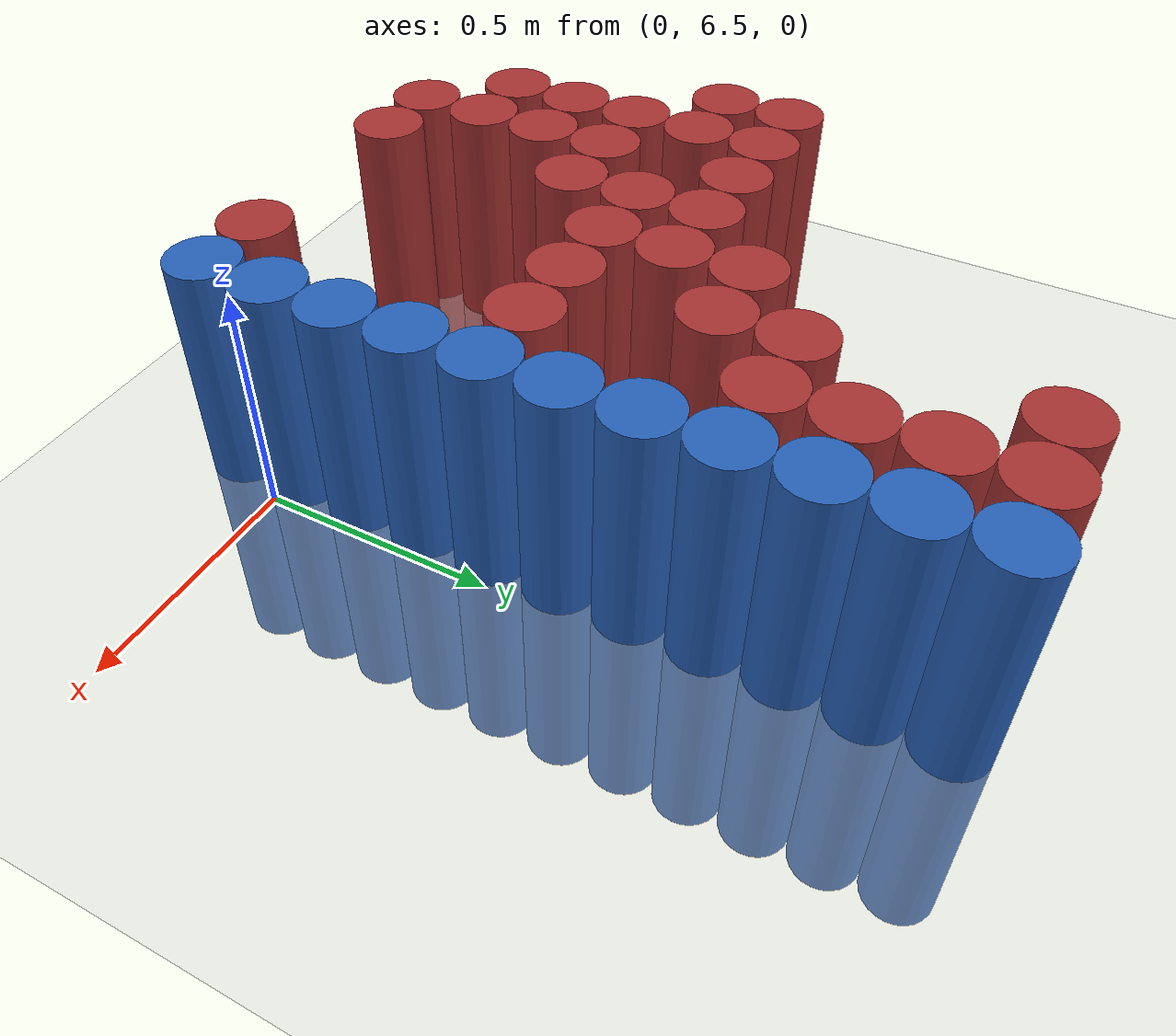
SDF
<sdf version="1.6">
 <world name="default">
  <model name="ground_plane">
   <static>1</static>
   <link name="link">
    <collision name="collision">
     <geometry><plane><normal>0 0 1</normal><size>100 100</size></plane></geometry>
     <surface><friction><ode><mu>100</mu><mu2>50</mu2></ode></friction></surface>
    </collision>
    <visual name="visual">
     <cast_shadows>0</cast_shadows>
     <geometry><plane><normal>0 0 1</normal><size>100 100</size></plane></geometry>
     <material>
      <script><uri>file://media/materials/scripts/gazebo.material</uri><name>Gazebo/Grey</name></script>
     </material>
    </visual>
   </link>
  </model>
  <model name="unit_cylinder_224">
   <static>1</static>
   <pose>-1.125000 6.975000 0.000000 0.000000 0.000000 0.000000</pose>
   <link name="link">
    <inertial>
     <mass>1</mass>
     <inertia><ixx>0.145833</ixx><ixy>0</ixy><ixz>0</ixz><iyy>0.145833</iyy><iyz>0</iyz><izz>0.125</izz></inertia>
    </inertial>
    <collision name="collision">
     <geometry><cylinder><radius>0.075000</radius><length>1</length></cylinder></geometry>
    </collision>
    <visual name="visual">
     <geometry><cylinder><radius>0.075000</radius><length>1</length></cylinder></geometry>
     <material>
      <ambient>0.648000 0.192000 0.192000 1</ambient>
      <diffuse>0.648000 0.192000 0.192000 1</diffuse>
     </material>
     <material>
      <script><name>Gazebo/Grey</name><uri>file://media/materials/scripts/gazebo.material</uri></script>
     </material>
    </visual>
    <sensor name="sensor_contact" type="contact"><contact><collision>collision</collision></contact></sensor>
   </link>
   <plugin filename="gz-sim-touchplugin-system" name="gz::sim::systems::TouchPlugin">
    <target>robot</target>
    <namespace>robot</namespace>
    <time>0.001</time>
    <enabled>true</enabled>
   </plugin>
  </model>
  <model name="unit_cylinder_225">
   <static>1</static>
   <pose>-1.125000 7.125000 0.000000 0.000000 0.000000 0.000000</pose>
   <link name="link">
    <inertial>
     <mass>1</mass>
     <inertia><ixx>0.145833</ixx><ixy>0</ixy><ixz>0</ixz><iyy>0.145833</iyy><iyz>0</iyz><izz>0.125</izz></inertia>
    </inertial>
    <collision name="collision">
     <geometry><cylinder><radius>0.075000</radius><length>1</length></cylinder></geometry>
    </collision>
    <visual name="visual">
     <geometry><cylinder><radius>0.075000</radius><length>1</length></cylinder></geometry>
     <material>
      <ambient>0.648000 0.192000 0.192000 1</ambient>
      <diffuse>0.648000 0.192000 0.192000 1</diffuse>
     </material>
     <material>
      <script><name>Gazebo/Grey</name><uri>file://media/materials/scripts/gazebo.material</uri></script>
     </material>
    </visual>
    <sensor name="sensor_contact" type="contact"><contact><collision>collision</collision></contact></sensor>
   </link>
   <plugin filename="gz-sim-touchplugin-system" name="gz::sim::systems::TouchPlugin">
    <target>robot</target>
    <namespace>robot</namespace>
    <time>0.001</time>
    <enabled>true</enabled>
   </plugin>
  </model>
  <model name="unit_cylinder_227">
   <static>1</static>
   <pose>-0.975000 6.525000 0.000000 0.000000 0.000000 0.000000</pose>
   <link name="link">
    <inertial>
     <mass>1</mass>
     <inertia><ixx>0.145833</ixx><ixy>0</ixy><ixz>0</ixz><iyy>0.145833</iyy><iyz>0</iyz><izz>0.125</izz></inertia>
    </inertial>
    <collision name="collision">
     <geometry><cylinder><radius>0.075000</radius><length>1</length></cylinder></geometry>
    </collision>
    <visual name="visual">
     <geometry><cylinder><radius>0.075000</radius><length>1</length></cylinder></geometry>
     <material>
      <ambient>0.648000 0.192000 0.192000 1</ambient>
      <diffuse>0.648000 0.192000 0.192000 1</diffuse>
     </material>
     <material>
      <script><name>Gazebo/Grey</name><uri>file://media/materials/scripts/gazebo.material</uri></script>
     </material>
    </visual>
    <sensor name="sensor_contact" type="contact"><contact><collision>collision</collision></contact></sensor>
   </link>
   <plugin filename="gz-sim-touchplugin-system" name="gz::sim::systems::TouchPlugin">
    <target>robot</target>
    <namespace>robot</namespace>
    <time>0.001</time>
    <enabled>true</enabled>
   </plugin>
  </model>
  <model name="unit_cylinder_228">
   <static>1</static>
   <pose>-0.975000 6.675000 0.000000 0.000000 0.000000 0.000000</pose>
   <link name="link">
    <inertial>
     <mass>1</mass>
     <inertia><ixx>0.145833</ixx><ixy>0</ixy><ixz>0</ixz><iyy>0.145833</iyy><iyz>0</iyz><izz>0.125</izz></inertia>
    </inertial>
    <collision name="collision">
     <geometry><cylinder><radius>0.075000</radius><length>1</length></cylinder></geometry>
    </collision>
    <visual name="visual">
     <geometry><cylinder><radius>0.075000</radius><length>1</length></cylinder></geometry>
     <material>
      <ambient>0.648000 0.192000 0.192000 1</ambient>
      <diffuse>0.648000 0.192000 0.192000 1</diffuse>
     </material>
     <material>
      <script><name>Gazebo/Grey</name><uri>file://media/materials/scripts/gazebo.material</uri></script>
     </material>
    </visual>
    <sensor name="sensor_contact" type="contact"><contact><collision>collision</collision></contact></sensor>
   </link>
   <plugin filename="gz-sim-touchplugin-system" name="gz::sim::systems::TouchPlugin">
    <target>robot</target>
    <namespace>robot</namespace>
    <time>0.001</time>
    <enabled>true</enabled>
   </plugin>
  </model>
  <model name="unit_cylinder_229">
   <static>1</static>
   <pose>-0.975000 6.825000 0.000000 0.000000 0.000000 0.000000</pose>
   <link name="link">
    <inertial>
     <mass>1</mass>
     <inertia><ixx>0.145833</ixx><ixy>0</ixy><ixz>0</ixz><iyy>0.145833</iyy><iyz>0</iyz><izz>0.125</izz></inertia>
    </inertial>
    <collision name="collision">
     <geometry><cylinder><radius>0.075000</radius><length>1</length></cylinder></geometry>
    </collision>
    <visual name="visual">
     <geometry><cylinder><radius>0.075000</radius><length>1</length></cylinder></geometry>
     <material>
      <ambient>0.648000 0.192000 0.192000 1</ambient>
      <diffuse>0.648000 0.192000 0.192000 1</diffuse>
     </material>
     <material>
      <script><name>Gazebo/Grey</name><uri>file://media/materials/scripts/gazebo.material</uri></script>
     </material>
    </visual>
    <sensor name="sensor_contact" type="contact"><contact><collision>collision</collision></contact></sensor>
   </link>
   <plugin filename="gz-sim-touchplugin-system" name="gz::sim::systems::TouchPlugin">
    <target>robot</target>
    <namespace>robot</namespace>
    <time>0.001</time>
    <enabled>true</enabled>
   </plugin>
  </model>
  <model name="unit_cylinder_230">
   <static>1</static>
   <pose>-0.975000 6.975000 0.000000 0.000000 0.000000 0.000000</pose>
   <link name="link">
    <inertial>
     <mass>1</mass>
     <inertia><ixx>0.145833</ixx><ixy>0</ixy><ixz>0</ixz><iyy>0.145833</iyy><iyz>0</iyz><izz>0.125</izz></inertia>
    </inertial>
    <collision name="collision">
     <geometry><cylinder><radius>0.075000</radius><length>1</length></cylinder></geometry>
    </collision>
    <visual name="visual">
     <geometry><cylinder><radius>0.075000</radius><length>1</length></cylinder></geometry>
     <material>
      <ambient>0.648000 0.192000 0.192000 1</ambient>
      <diffuse>0.648000 0.192000 0.192000 1</diffuse>
     </material>
     <material>
      <script><name>Gazebo/Grey</name><uri>file://media/materials/scripts/gazebo.material</uri></script>
     </material>
    </visual>
    <sensor name="sensor_contact" type="contact"><contact><collision>collision</collision></contact></sensor>
   </link>
   <plugin filename="gz-sim-touchplugin-system" name="gz::sim::systems::TouchPlugin">
    <target>robot</target>
    <namespace>robot</namespace>
    <time>0.001</time>
    <enabled>true</enabled>
   </plugin>
  </model>
  <model name="unit_cylinder_231">
   <static>1</static>
   <pose>-0.975000 7.125000 0.000000 0.000000 0.000000 0.000000</pose>
   <link name="link">
    <inertial>
     <mass>1</mass>
     <inertia><ixx>0.145833</ixx><ixy>0</ixy><ixz>0</ixz><iyy>0.145833</iyy><iyz>0</iyz><izz>0.125</izz></inertia>
    </inertial>
    <collision name="collision">
     <geometry><cylinder><radius>0.075000</radius><length>1</length></cylinder></geometry>
    </collision>
    <visual name="visual">
     <geometry><cylinder><radius>0.075000</radius><length>1</length></cylinder></geometry>
     <material>
      <ambient>0.648000 0.192000 0.192000 1</ambient>
      <diffuse>0.648000 0.192000 0.192000 1</diffuse>
     </material>
     <material>
      <script><name>Gazebo/Grey</name><uri>file://media/materials/scripts/gazebo.material</uri></script>
     </material>
    </visual>
    <sensor name="sensor_contact" type="contact"><contact><collision>collision</collision></contact></sensor>
   </link>
   <plugin filename="gz-sim-touchplugin-system" name="gz::sim::systems::TouchPlugin">
    <target>robot</target>
    <namespace>robot</namespace>
    <time>0.001</time>
    <enabled>true</enabled>
   </plugin>
  </model>
  <model name="unit_cylinder_237">
   <static>1</static>
   <pose>-0.825000 6.375000 0.000000 0.000000 0.000000 0.000000</pose>
   <link name="link">
    <inertial>
     <mass>1</mass>
     <inertia><ixx>0.145833</ixx><ixy>0</ixy><ixz>0</ixz><iyy>0.145833</iyy><iyz>0</iyz><izz>0.125</izz></inertia>
    </inertial>
    <collision name="collision">
     <geometry><cylinder><radius>0.075000</radius><length>1</length></cylinder></geometry>
    </collision>
    <visual name="visual">
     <geometry><cylinder><radius>0.075000</radius><length>1</length></cylinder></geometry>
     <material>
      <ambient>0.648000 0.192000 0.192000 1</ambient>
      <diffuse>0.648000 0.192000 0.192000 1</diffuse>
     </material>
     <material>
      <script><name>Gazebo/Grey</name><uri>file://media/materials/scripts/gazebo.material</uri></script>
     </material>
    </visual>
    <sensor name="sensor_contact" type="contact"><contact><collision>collision</collision></contact></sensor>
   </link>
   <plugin filename="gz-sim-touchplugin-system" name="gz::sim::systems::TouchPlugin">
    <target>robot</target>
    <namespace>robot</namespace>
    <time>0.001</time>
    <enabled>true</enabled>
   </plugin>
  </model>
  <model name="unit_cylinder_238">
   <static>1</static>
   <pose>-0.825000 6.525000 0.000000 0.000000 0.000000 0.000000</pose>
   <link name="link">
    <inertial>
     <mass>1</mass>
     <inertia><ixx>0.145833</ixx><ixy>0</ixy><ixz>0</ixz><iyy>0.145833</iyy><iyz>0</iyz><izz>0.125</izz></inertia>
    </inertial>
    <collision name="collision">
     <geometry><cylinder><radius>0.075000</radius><length>1</length></cylinder></geometry>
    </collision>
    <visual name="visual">
     <geometry><cylinder><radius>0.075000</radius><length>1</length></cylinder></geometry>
     <material>
      <ambient>0.648000 0.192000 0.192000 1</ambient>
      <diffuse>0.648000 0.192000 0.192000 1</diffuse>
     </material>
     <material>
      <script><name>Gazebo/Grey</name><uri>file://media/materials/scripts/gazebo.material</uri></script>
     </material>
    </visual>
    <sensor name="sensor_contact" type="contact"><contact><collision>collision</collision></contact></sensor>
   </link>
   <plugin filename="gz-sim-touchplugin-system" name="gz::sim::systems::TouchPlugin">
    <target>robot</target>
    <namespace>robot</namespace>
    <time>0.001</time>
    <enabled>true</enabled>
   </plugin>
  </model>
  <model name="unit_cylinder_239">
   <static>1</static>
   <pose>-0.825000 6.675000 0.000000 0.000000 0.000000 0.000000</pose>
   <link name="link">
    <inertial>
     <mass>1</mass>
     <inertia><ixx>0.145833</ixx><ixy>0</ixy><ixz>0</ixz><iyy>0.145833</iyy><iyz>0</iyz><izz>0.125</izz></inertia>
    </inertial>
    <collision name="collision">
     <geometry><cylinder><radius>0.075000</radius><length>1</length></cylinder></geometry>
    </collision>
    <visual name="visual">
     <geometry><cylinder><radius>0.075000</radius><length>1</length></cylinder></geometry>
     <material>
      <ambient>0.648000 0.192000 0.192000 1</ambient>
      <diffuse>0.648000 0.192000 0.192000 1</diffuse>
     </material>
     <material>
      <script><name>Gazebo/Grey</name><uri>file://media/materials/scripts/gazebo.material</uri></script>
     </material>
    </visual>
    <sensor name="sensor_contact" type="contact"><contact><collision>collision</collision></contact></sensor>
   </link>
   <plugin filename="gz-sim-touchplugin-system" name="gz::sim::systems::TouchPlugin">
    <target>robot</target>
    <namespace>robot</namespace>
    <time>0.001</time>
    <enabled>true</enabled>
   </plugin>
  </model>
  <model name="unit_cylinder_240">
   <static>1</static>
   <pose>-0.825000 6.825000 0.000000 0.000000 0.000000 0.000000</pose>
   <link name="link">
    <inertial>
     <mass>1</mass>
     <inertia><ixx>0.145833</ixx><ixy>0</ixy><ixz>0</ixz><iyy>0.145833</iyy><iyz>0</iyz><izz>0.125</izz></inertia>
    </inertial>
    <collision name="collision">
     <geometry><cylinder><radius>0.075000</radius><length>1</length></cylinder></geometry>
    </collision>
    <visual name="visual">
     <geometry><cylinder><radius>0.075000</radius><length>1</length></cylinder></geometry>
     <material>
      <ambient>0.648000 0.192000 0.192000 1</ambient>
      <diffuse>0.648000 0.192000 0.192000 1</diffuse>
     </material>
     <material>
      <script><name>Gazebo/Grey</name><uri>file://media/materials/scripts/gazebo.material</uri></script>
     </material>
    </visual>
    <sensor name="sensor_contact" type="contact"><contact><collision>collision</collision></contact></sensor>
   </link>
   <plugin filename="gz-sim-touchplugin-system" name="gz::sim::systems::TouchPlugin">
    <target>robot</target>
    <namespace>robot</namespace>
    <time>0.001</time>
    <enabled>true</enabled>
   </plugin>
  </model>
  <model name="unit_cylinder_241">
   <static>1</static>
   <pose>-0.825000 7.125000 0.000000 0.000000 0.000000 0.000000</pose>
   <link name="link">
    <inertial>
     <mass>1</mass>
     <inertia><ixx>0.145833</ixx><ixy>0</ixy><ixz>0</ixz><iyy>0.145833</iyy><iyz>0</iyz><izz>0.125</izz></inertia>
    </inertial>
    <collision name="collision">
     <geometry><cylinder><radius>0.075000</radius><length>1</length></cylinder></geometry>
    </collision>
    <visual name="visual">
     <geometry><cylinder><radius>0.075000</radius><length>1</length></cylinder></geometry>
     <material>
      <ambient>0.648000 0.192000 0.192000 1</ambient>
      <diffuse>0.648000 0.192000 0.192000 1</diffuse>
     </material>
     <material>
      <script><name>Gazebo/Grey</name><uri>file://media/materials/scripts/gazebo.material</uri></script>
     </material>
    </visual>
    <sensor name="sensor_contact" type="contact"><contact><collision>collision</collision></contact></sensor>
   </link>
   <plugin filename="gz-sim-touchplugin-system" name="gz::sim::systems::TouchPlugin">
    <target>robot</target>
    <namespace>robot</namespace>
    <time>0.001</time>
    <enabled>true</enabled>
   </plugin>
  </model>
  <model name="unit_cylinder_249">
   <static>1</static>
   <pose>-0.675000 6.375000 0.000000 0.000000 0.000000 0.000000</pose>
   <link name="link">
    <inertial>
     <mass>1</mass>
     <inertia><ixx>0.145833</ixx><ixy>0</ixy><ixz>0</ixz><iyy>0.145833</iyy><iyz>0</iyz><izz>0.125</izz></inertia>
    </inertial>
    <collision name="collision">
     <geometry><cylinder><radius>0.075000</radius><length>1</length></cylinder></geometry>
    </collision>
    <visual name="visual">
     <geometry><cylinder><radius>0.075000</radius><length>1</length></cylinder></geometry>
     <material>
      <ambient>0.648000 0.192000 0.192000 1</ambient>
      <diffuse>0.648000 0.192000 0.192000 1</diffuse>
     </material>
     <material>
      <script><name>Gazebo/Grey</name><uri>file://media/materials/scripts/gazebo.material</uri></script>
     </material>
    </visual>
    <sensor name="sensor_contact" type="contact"><contact><collision>collision</collision></contact></sensor>
   </link>
   <plugin filename="gz-sim-touchplugin-system" name="gz::sim::systems::TouchPlugin">
    <target>robot</target>
    <namespace>robot</namespace>
    <time>0.001</time>
    <enabled>true</enabled>
   </plugin>
  </model>
  <model name="unit_cylinder_250">
   <static>1</static>
   <pose>-0.675000 6.825000 0.000000 0.000000 0.000000 0.000000</pose>
   <link name="link">
    <inertial>
     <mass>1</mass>
     <inertia><ixx>0.145833</ixx><ixy>0</ixy><ixz>0</ixz><iyy>0.145833</iyy><iyz>0</iyz><izz>0.125</izz></inertia>
    </inertial>
    <collision name="collision">
     <geometry><cylinder><radius>0.075000</radius><length>1</length></cylinder></geometry>
    </collision>
    <visual name="visual">
     <geometry><cylinder><radius>0.075000</radius><length>1</length></cylinder></geometry>
     <material>
      <ambient>0.648000 0.192000 0.192000 1</ambient>
      <diffuse>0.648000 0.192000 0.192000 1</diffuse>
     </material>
     <material>
      <script><name>Gazebo/Grey</name><uri>file://media/materials/scripts/gazebo.material</uri></script>
     </material>
    </visual>
    <sensor name="sensor_contact" type="contact"><contact><collision>collision</collision></contact></sensor>
   </link>
   <plugin filename="gz-sim-touchplugin-system" name="gz::sim::systems::TouchPlugin">
    <target>robot</target>
    <namespace>robot</namespace>
    <time>0.001</time>
    <enabled>true</enabled>
   </plugin>
  </model>
  <model name="unit_cylinder_251">
   <static>1</static>
   <pose>-0.675000 6.975000 0.000000 0.000000 0.000000 0.000000</pose>
   <link name="link">
    <inertial>
     <mass>1</mass>
     <inertia><ixx>0.145833</ixx><ixy>0</ixy><ixz>0</ixz><iyy>0.145833</iyy><iyz>0</iyz><izz>0.125</izz></inertia>
    </inertial>
    <collision name="collision">
     <geometry><cylinder><radius>0.075000</radius><length>1</length></cylinder></geometry>
    </collision>
    <visual name="visual">
     <geometry><cylinder><radius>0.075000</radius><length>1</length></cylinder></geometry>
     <material>
      <ambient>0.648000 0.192000 0.192000 1</ambient>
      <diffuse>0.648000 0.192000 0.192000 1</diffuse>
     </material>
     <material>
      <script><name>Gazebo/Grey</name><uri>file://media/materials/scripts/gazebo.material</uri></script>
     </material>
    </visual>
    <sensor name="sensor_contact" type="contact"><contact><collision>collision</collision></contact></sensor>
   </link>
   <plugin filename="gz-sim-touchplugin-system" name="gz::sim::systems::TouchPlugin">
    <target>robot</target>
    <namespace>robot</namespace>
    <time>0.001</time>
    <enabled>true</enabled>
   </plugin>
  </model>
  <model name="unit_cylinder_252">
   <static>1</static>
   <pose>-0.675000 7.125000 0.000000 0.000000 0.000000 0.000000</pose>
   <link name="link">
    <inertial>
     <mass>1</mass>
     <inertia><ixx>0.145833</ixx><ixy>0</ixy><ixz>0</ixz><iyy>0.145833</iyy><iyz>0</iyz><izz>0.125</izz></inertia>
    </inertial>
    <collision name="collision">
     <geometry><cylinder><radius>0.075000</radius><length>1</length></cylinder></geometry>
    </collision>
    <visual name="visual">
     <geometry><cylinder><radius>0.075000</radius><length>1</length></cylinder></geometry>
     <material>
      <ambient>0.648000 0.192000 0.192000 1</ambient>
      <diffuse>0.648000 0.192000 0.192000 1</diffuse>
     </material>
     <material>
      <script><name>Gazebo/Grey</name><uri>file://media/materials/scripts/gazebo.material</uri></script>
     </material>
    </visual>
    <sensor name="sensor_contact" type="contact"><contact><collision>collision</collision></contact></sensor>
   </link>
   <plugin filename="gz-sim-touchplugin-system" name="gz::sim::systems::TouchPlugin">
    <target>robot</target>
    <namespace>robot</namespace>
    <time>0.001</time>
    <enabled>true</enabled>
   </plugin>
  </model>
  <model name="unit_cylinder_261">
   <static>1</static>
   <pose>-0.525000 6.975000 0.000000 0.000000 0.000000 0.000000</pose>
   <link name="link">
    <inertial>
     <mass>1</mass>
     <inertia><ixx>0.145833</ixx><ixy>0</ixy><ixz>0</ixz><iyy>0.145833</iyy><iyz>0</iyz><izz>0.125</izz></inertia>
    </inertial>
    <collision name="collision">
     <geometry><cylinder><radius>0.075000</radius><length>1</length></cylinder></geometry>
    </collision>
    <visual name="visual">
     <geometry><cylinder><radius>0.075000</radius><length>1</length></cylinder></geometry>
     <material>
      <ambient>0.648000 0.192000 0.192000 1</ambient>
      <diffuse>0.648000 0.192000 0.192000 1</diffuse>
     </material>
     <material>
      <script><name>Gazebo/Grey</name><uri>file://media/materials/scripts/gazebo.material</uri></script>
     </material>
    </visual>
    <sensor name="sensor_contact" type="contact"><contact><collision>collision</collision></contact></sensor>
   </link>
   <plugin filename="gz-sim-touchplugin-system" name="gz::sim::systems::TouchPlugin">
    <target>robot</target>
    <namespace>robot</namespace>
    <time>0.001</time>
    <enabled>true</enabled>
   </plugin>
  </model>
  <model name="unit_cylinder_262">
   <static>1</static>
   <pose>-0.525000 7.125000 0.000000 0.000000 0.000000 0.000000</pose>
   <link name="link">
    <inertial>
     <mass>1</mass>
     <inertia><ixx>0.145833</ixx><ixy>0</ixy><ixz>0</ixz><iyy>0.145833</iyy><iyz>0</iyz><izz>0.125</izz></inertia>
    </inertial>
    <collision name="collision">
     <geometry><cylinder><radius>0.075000</radius><length>1</length></cylinder></geometry>
    </collision>
    <visual name="visual">
     <geometry><cylinder><radius>0.075000</radius><length>1</length></cylinder></geometry>
     <material>
      <ambient>0.648000 0.192000 0.192000 1</ambient>
      <diffuse>0.648000 0.192000 0.192000 1</diffuse>
     </material>
     <material>
      <script><name>Gazebo/Grey</name><uri>file://media/materials/scripts/gazebo.material</uri></script>
     </material>
    </visual>
    <sensor name="sensor_contact" type="contact"><contact><collision>collision</collision></contact></sensor>
   </link>
   <plugin filename="gz-sim-touchplugin-system" name="gz::sim::systems::TouchPlugin">
    <target>robot</target>
    <namespace>robot</namespace>
    <time>0.001</time>
    <enabled>true</enabled>
   </plugin>
  </model>
  <model name="unit_cylinder_263">
   <static>1</static>
   <pose>-0.525000 7.275000 0.000000 0.000000 0.000000 0.000000</pose>
   <link name="link">
    <inertial>
     <mass>1</mass>
     <inertia><ixx>0.145833</ixx><ixy>0</ixy><ixz>0</ixz><iyy>0.145833</iyy><iyz>0</iyz><izz>0.125</izz></inertia>
    </inertial>
    <collision name="collision">
     <geometry><cylinder><radius>0.075000</radius><length>1</length></cylinder></geometry>
    </collision>
    <visual name="visual">
     <geometry><cylinder><radius>0.075000</radius><length>1</length></cylinder></geometry>
     <material>
      <ambient>0.648000 0.192000 0.192000 1</ambient>
      <diffuse>0.648000 0.192000 0.192000 1</diffuse>
     </material>
     <material>
      <script><name>Gazebo/Grey</name><uri>file://media/materials/scripts/gazebo.material</uri></script>
     </material>
    </visual>
    <sensor name="sensor_contact" type="contact"><contact><collision>collision</collision></contact></sensor>
   </link>
   <plugin filename="gz-sim-touchplugin-system" name="gz::sim::systems::TouchPlugin">
    <target>robot</target>
    <namespace>robot</namespace>
    <time>0.001</time>
    <enabled>true</enabled>
   </plugin>
  </model>
  <model name="unit_cylinder_271">
   <static>1</static>
   <pose>-0.375000 6.975000 0.000000 0.000000 0.000000 0.000000</pose>
   <link name="link">
    <inertial>
     <mass>1</mass>
     <inertia><ixx>0.145833</ixx><ixy>0</ixy><ixz>0</ixz><iyy>0.145833</iyy><iyz>0</iyz><izz>0.125</izz></inertia>
    </inertial>
    <collision name="collision">
     <geometry><cylinder><radius>0.075000</radius><length>1</length></cylinder></geometry>
    </collision>
    <visual name="visual">
     <geometry><cylinder><radius>0.075000</radius><length>1</length></cylinder></geometry>
     <material>
      <ambient>0.648000 0.192000 0.192000 1</ambient>
      <diffuse>0.648000 0.192000 0.192000 1</diffuse>
     </material>
     <material>
      <script><name>Gazebo/Grey</name><uri>file://media/materials/scripts/gazebo.material</uri></script>
     </material>
    </visual>
    <sensor name="sensor_contact" type="contact"><contact><collision>collision</collision></contact></sensor>
   </link>
   <plugin filename="gz-sim-touchplugin-system" name="gz::sim::systems::TouchPlugin">
    <target>robot</target>
    <namespace>robot</namespace>
    <time>0.001</time>
    <enabled>true</enabled>
   </plugin>
  </model>
  <model name="unit_cylinder_272">
   <static>1</static>
   <pose>-0.375000 7.275000 0.000000 0.000000 0.000000 0.000000</pose>
   <link name="link">
    <inertial>
     <mass>1</mass>
     <inertia><ixx>0.145833</ixx><ixy>0</ixy><ixz>0</ixz><iyy>0.145833</iyy><iyz>0</iyz><izz>0.125</izz></inertia>
    </inertial>
    <collision name="collision">
     <geometry><cylinder><radius>0.075000</radius><length>1</length></cylinder></geometry>
    </collision>
    <visual name="visual">
     <geometry><cylinder><radius>0.075000</radius><length>1</length></cylinder></geometry>
     <material>
      <ambient>0.648000 0.192000 0.192000 1</ambient>
      <diffuse>0.648000 0.192000 0.192000 1</diffuse>
     </material>
     <material>
      <script><name>Gazebo/Grey</name><uri>file://media/materials/scripts/gazebo.material</uri></script>
     </material>
    </visual>
    <sensor name="sensor_contact" type="contact"><contact><collision>collision</collision></contact></sensor>
   </link>
   <plugin filename="gz-sim-touchplugin-system" name="gz::sim::systems::TouchPlugin">
    <target>robot</target>
    <namespace>robot</namespace>
    <time>0.001</time>
    <enabled>true</enabled>
   </plugin>
  </model>
  <model name="unit_cylinder_273">
   <static>1</static>
   <pose>-0.375000 7.425000 0.000000 0.000000 0.000000 0.000000</pose>
   <link name="link">
    <inertial>
     <mass>1</mass>
     <inertia><ixx>0.145833</ixx><ixy>0</ixy><ixz>0</ixz><iyy>0.145833</iyy><iyz>0</iyz><izz>0.125</izz></inertia>
    </inertial>
    <collision name="collision">
     <geometry><cylinder><radius>0.075000</radius><length>1</length></cylinder></geometry>
    </collision>
    <visual name="visual">
     <geometry><cylinder><radius>0.075000</radius><length>1</length></cylinder></geometry>
     <material>
      <ambient>0.648000 0.192000 0.192000 1</ambient>
      <diffuse>0.648000 0.192000 0.192000 1</diffuse>
     </material>
     <material>
      <script><name>Gazebo/Grey</name><uri>file://media/materials/scripts/gazebo.material</uri></script>
     </material>
    </visual>
    <sensor name="sensor_contact" type="contact"><contact><collision>collision</collision></contact></sensor>
   </link>
   <plugin filename="gz-sim-touchplugin-system" name="gz::sim::systems::TouchPlugin">
    <target>robot</target>
    <namespace>robot</namespace>
    <time>0.001</time>
    <enabled>true</enabled>
   </plugin>
  </model>
  <model name="unit_cylinder_274">
   <static>1</static>
   <pose>-0.375000 7.875000 0.000000 0.000000 0.000000 0.000000</pose>
   <link name="link">
    <inertial>
     <mass>1</mass>
     <inertia><ixx>0.145833</ixx><ixy>0</ixy><ixz>0</ixz><iyy>0.145833</iyy><iyz>0</iyz><izz>0.125</izz></inertia>
    </inertial>
    <collision name="collision">
     <geometry><cylinder><radius>0.075000</radius><length>1</length></cylinder></geometry>
    </collision>
    <visual name="visual">
     <geometry><cylinder><radius>0.075000</radius><length>1</length></cylinder></geometry>
     <material>
      <ambient>0.648000 0.192000 0.192000 1</ambient>
      <diffuse>0.648000 0.192000 0.192000 1</diffuse>
     </material>
     <material>
      <script><name>Gazebo/Grey</name><uri>file://media/materials/scripts/gazebo.material</uri></script>
     </material>
    </visual>
    <sensor name="sensor_contact" type="contact"><contact><collision>collision</collision></contact></sensor>
   </link>
   <plugin filename="gz-sim-touchplugin-system" name="gz::sim::systems::TouchPlugin">
    <target>robot</target>
    <namespace>robot</namespace>
    <time>0.001</time>
    <enabled>true</enabled>
   </plugin>
  </model>
  <model name="unit_cylinder_287">
   <static>1</static>
   <pose>-0.225000 6.375000 0.000000 0.000000 0.000000 0.000000</pose>
   <link name="link">
    <inertial>
     <mass>1</mass>
     <inertia><ixx>0.145833</ixx><ixy>0</ixy><ixz>0</ixz><iyy>0.145833</iyy><iyz>0</iyz><izz>0.125</izz></inertia>
    </inertial>
    <collision name="collision">
     <geometry><cylinder><radius>0.075000</radius><length>1</length></cylinder></geometry>
    </collision>
    <visual name="visual">
     <geometry><cylinder><radius>0.075000</radius><length>1</length></cylinder></geometry>
     <material>
      <ambient>0.648000 0.192000 0.192000 1</ambient>
      <diffuse>0.648000 0.192000 0.192000 1</diffuse>
     </material>
     <material>
      <script><name>Gazebo/Grey</name><uri>file://media/materials/scripts/gazebo.material</uri></script>
     </material>
    </visual>
    <sensor name="sensor_contact" type="contact"><contact><collision>collision</collision></contact></sensor>
   </link>
   <plugin filename="gz-sim-touchplugin-system" name="gz::sim::systems::TouchPlugin">
    <target>robot</target>
    <namespace>robot</namespace>
    <time>0.001</time>
    <enabled>true</enabled>
   </plugin>
  </model>
  <model name="unit_cylinder_288">
   <static>1</static>
   <pose>-0.225000 6.975000 0.000000 0.000000 0.000000 0.000000</pose>
   <link name="link">
    <inertial>
     <mass>1</mass>
     <inertia><ixx>0.145833</ixx><ixy>0</ixy><ixz>0</ixz><iyy>0.145833</iyy><iyz>0</iyz><izz>0.125</izz></inertia>
    </inertial>
    <collision name="collision">
     <geometry><cylinder><radius>0.075000</radius><length>1</length></cylinder></geometry>
    </collision>
    <visual name="visual">
     <geometry><cylinder><radius>0.075000</radius><length>1</length></cylinder></geometry>
     <material>
      <ambient>0.648000 0.192000 0.192000 1</ambient>
      <diffuse>0.648000 0.192000 0.192000 1</diffuse>
     </material>
     <material>
      <script><name>Gazebo/Grey</name><uri>file://media/materials/scripts/gazebo.material</uri></script>
     </material>
    </visual>
    <sensor name="sensor_contact" type="contact"><contact><collision>collision</collision></contact></sensor>
   </link>
   <plugin filename="gz-sim-touchplugin-system" name="gz::sim::systems::TouchPlugin">
    <target>robot</target>
    <namespace>robot</namespace>
    <time>0.001</time>
    <enabled>true</enabled>
   </plugin>
  </model>
  <model name="unit_cylinder_289">
   <static>1</static>
   <pose>-0.225000 7.425000 0.000000 0.000000 0.000000 0.000000</pose>
   <link name="link">
    <inertial>
     <mass>1</mass>
     <inertia><ixx>0.145833</ixx><ixy>0</ixy><ixz>0</ixz><iyy>0.145833</iyy><iyz>0</iyz><izz>0.125</izz></inertia>
    </inertial>
    <collision name="collision">
     <geometry><cylinder><radius>0.075000</radius><length>1</length></cylinder></geometry>
    </collision>
    <visual name="visual">
     <geometry><cylinder><radius>0.075000</radius><length>1</length></cylinder></geometry>
     <material>
      <ambient>0.648000 0.192000 0.192000 1</ambient>
      <diffuse>0.648000 0.192000 0.192000 1</diffuse>
     </material>
     <material>
      <script><name>Gazebo/Grey</name><uri>file://media/materials/scripts/gazebo.material</uri></script>
     </material>
    </visual>
    <sensor name="sensor_contact" type="contact"><contact><collision>collision</collision></contact></sensor>
   </link>
   <plugin filename="gz-sim-touchplugin-system" name="gz::sim::systems::TouchPlugin">
    <target>robot</target>
    <namespace>robot</namespace>
    <time>0.001</time>
    <enabled>true</enabled>
   </plugin>
  </model>
  <model name="unit_cylinder_290">
   <static>1</static>
   <pose>-0.225000 7.575000 0.000000 0.000000 0.000000 0.000000</pose>
   <link name="link">
    <inertial>
     <mass>1</mass>
     <inertia><ixx>0.145833</ixx><ixy>0</ixy><ixz>0</ixz><iyy>0.145833</iyy><iyz>0</iyz><izz>0.125</izz></inertia>
    </inertial>
    <collision name="collision">
     <geometry><cylinder><radius>0.075000</radius><length>1</length></cylinder></geometry>
    </collision>
    <visual name="visual">
     <geometry><cylinder><radius>0.075000</radius><length>1</length></cylinder></geometry>
     <material>
      <ambient>0.648000 0.192000 0.192000 1</ambient>
      <diffuse>0.648000 0.192000 0.192000 1</diffuse>
     </material>
     <material>
      <script><name>Gazebo/Grey</name><uri>file://media/materials/scripts/gazebo.material</uri></script>
     </material>
    </visual>
    <sensor name="sensor_contact" type="contact"><contact><collision>collision</collision></contact></sensor>
   </link>
   <plugin filename="gz-sim-touchplugin-system" name="gz::sim::systems::TouchPlugin">
    <target>robot</target>
    <namespace>robot</namespace>
    <time>0.001</time>
    <enabled>true</enabled>
   </plugin>
  </model>
  <model name="unit_cylinder_291">
   <static>1</static>
   <pose>-0.225000 7.725000 0.000000 0.000000 0.000000 0.000000</pose>
   <link name="link">
    <inertial>
     <mass>1</mass>
     <inertia><ixx>0.145833</ixx><ixy>0</ixy><ixz>0</ixz><iyy>0.145833</iyy><iyz>0</iyz><izz>0.125</izz></inertia>
    </inertial>
    <collision name="collision">
     <geometry><cylinder><radius>0.075000</radius><length>1</length></cylinder></geometry>
    </collision>
    <visual name="visual">
     <geometry><cylinder><radius>0.075000</radius><length>1</length></cylinder></geometry>
     <material>
      <ambient>0.648000 0.192000 0.192000 1</ambient>
      <diffuse>0.648000 0.192000 0.192000 1</diffuse>
     </material>
     <material>
      <script><name>Gazebo/Grey</name><uri>file://media/materials/scripts/gazebo.material</uri></script>
     </material>
    </visual>
    <sensor name="sensor_contact" type="contact"><contact><collision>collision</collision></contact></sensor>
   </link>
   <plugin filename="gz-sim-touchplugin-system" name="gz::sim::systems::TouchPlugin">
    <target>robot</target>
    <namespace>robot</namespace>
    <time>0.001</time>
    <enabled>true</enabled>
   </plugin>
  </model>
  <model name="unit_cylinder_292">
   <static>1</static>
   <pose>-0.225000 7.875000 0.000000 0.000000 0.000000 0.000000</pose>
   <link name="link">
    <inertial>
     <mass>1</mass>
     <inertia><ixx>0.145833</ixx><ixy>0</ixy><ixz>0</ixz><iyy>0.145833</iyy><iyz>0</iyz><izz>0.125</izz></inertia>
    </inertial>
    <collision name="collision">
     <geometry><cylinder><radius>0.075000</radius><length>1</length></cylinder></geometry>
    </collision>
    <visual name="visual">
     <geometry><cylinder><radius>0.075000</radius><length>1</length></cylinder></geometry>
     <material>
      <ambient>0.648000 0.192000 0.192000 1</ambient>
      <diffuse>0.648000 0.192000 0.192000 1</diffuse>
     </material>
     <material>
      <script><name>Gazebo/Grey</name><uri>file://media/materials/scripts/gazebo.material</uri></script>
     </material>
    </visual>
    <sensor name="sensor_contact" type="contact"><contact><collision>collision</collision></contact></sensor>
   </link>
   <plugin filename="gz-sim-touchplugin-system" name="gz::sim::systems::TouchPlugin">
    <target>robot</target>
    <namespace>robot</namespace>
    <time>0.001</time>
    <enabled>true</enabled>
   </plugin>
  </model>
  <model name="unit_cylinder_303">
   <static>1</static>
   <pose>-0.075000 6.375000 0.000000 0.000000 0.000000 0.000000</pose>
   <link name="link">
    <inertial>
     <mass>1</mass>
     <inertia><ixx>0.145833</ixx><ixy>0</ixy><ixz>0</ixz><iyy>0.145833</iyy><iyz>0</iyz><izz>0.125</izz></inertia>
    </inertial>
    <collision name="collision">
     <geometry><cylinder><radius>0.075000</radius><length>1</length></cylinder></geometry>
    </collision>
    <visual name="visual">
     <geometry><cylinder><radius>0.075000</radius><length>1</length></cylinder></geometry>
     <material>
      <ambient>0.152000 0.379000 0.720000 1</ambient>
      <diffuse>0.152000 0.379000 0.720000 1</diffuse>
     </material>
     <material>
      <script><name>Gazebo/Grey</name><uri>file://media/materials/scripts/gazebo.material</uri></script>
     </material>
    </visual>
    <sensor name="sensor_contact" type="contact"><contact><collision>collision</collision></contact></sensor>
   </link>
   <plugin filename="gz-sim-touchplugin-system" name="gz::sim::systems::TouchPlugin">
    <target>robot</target>
    <namespace>robot</namespace>
    <time>0.001</time>
    <enabled>true</enabled>
   </plugin>
  </model>
  <model name="unit_cylinder_304">
   <static>1</static>
   <pose>-0.075000 6.525000 0.000000 0.000000 0.000000 0.000000</pose>
   <link name="link">
    <inertial>
     <mass>1</mass>
     <inertia><ixx>0.145833</ixx><ixy>0</ixy><ixz>0</ixz><iyy>0.145833</iyy><iyz>0</iyz><izz>0.125</izz></inertia>
    </inertial>
    <collision name="collision">
     <geometry><cylinder><radius>0.075000</radius><length>1</length></cylinder></geometry>
    </collision>
    <visual name="visual">
     <geometry><cylinder><radius>0.075000</radius><length>1</length></cylinder></geometry>
     <material>
      <ambient>0.152000 0.379000 0.720000 1</ambient>
      <diffuse>0.152000 0.379000 0.720000 1</diffuse>
     </material>
     <material>
      <script><name>Gazebo/Grey</name><uri>file://media/materials/scripts/gazebo.material</uri></script>
     </material>
    </visual>
    <sensor name="sensor_contact" type="contact"><contact><collision>collision</collision></contact></sensor>
   </link>
   <plugin filename="gz-sim-touchplugin-system" name="gz::sim::systems::TouchPlugin">
    <target>robot</target>
    <namespace>robot</namespace>
    <time>0.001</time>
    <enabled>true</enabled>
   </plugin>
  </model>
  <model name="unit_cylinder_305">
   <static>1</static>
   <pose>-0.075000 6.675000 0.000000 0.000000 0.000000 0.000000</pose>
   <link name="link">
    <inertial>
     <mass>1</mass>
     <inertia><ixx>0.145833</ixx><ixy>0</ixy><ixz>0</ixz><iyy>0.145833</iyy><iyz>0</iyz><izz>0.125</izz></inertia>
    </inertial>
    <collision name="collision">
     <geometry><cylinder><radius>0.075000</radius><length>1</length></cylinder></geometry>
    </collision>
    <visual name="visual">
     <geometry><cylinder><radius>0.075000</radius><length>1</length></cylinder></geometry>
     <material>
      <ambient>0.152000 0.379000 0.720000 1</ambient>
      <diffuse>0.152000 0.379000 0.720000 1</diffuse>
     </material>
     <material>
      <script><name>Gazebo/Grey</name><uri>file://media/materials/scripts/gazebo.material</uri></script>
     </material>
    </visual>
    <sensor name="sensor_contact" type="contact"><contact><collision>collision</collision></contact></sensor>
   </link>
   <plugin filename="gz-sim-touchplugin-system" name="gz::sim::systems::TouchPlugin">
    <target>robot</target>
    <namespace>robot</namespace>
    <time>0.001</time>
    <enabled>true</enabled>
   </plugin>
  </model>
  <model name="unit_cylinder_306">
   <static>1</static>
   <pose>-0.075000 6.825000 0.000000 0.000000 0.000000 0.000000</pose>
   <link name="link">
    <inertial>
     <mass>1</mass>
     <inertia><ixx>0.145833</ixx><ixy>0</ixy><ixz>0</ixz><iyy>0.145833</iyy><iyz>0</iyz><izz>0.125</izz></inertia>
    </inertial>
    <collision name="collision">
     <geometry><cylinder><radius>0.075000</radius><length>1</length></cylinder></geometry>
    </collision>
    <visual name="visual">
     <geometry><cylinder><radius>0.075000</radius><length>1</length></cylinder></geometry>
     <material>
      <ambient>0.152000 0.379000 0.720000 1</ambient>
      <diffuse>0.152000 0.379000 0.720000 1</diffuse>
     </material>
     <material>
      <script><name>Gazebo/Grey</name><uri>file://media/materials/scripts/gazebo.material</uri></script>
     </material>
    </visual>
    <sensor name="sensor_contact" type="contact"><contact><collision>collision</collision></contact></sensor>
   </link>
   <plugin filename="gz-sim-touchplugin-system" name="gz::sim::systems::TouchPlugin">
    <target>robot</target>
    <namespace>robot</namespace>
    <time>0.001</time>
    <enabled>true</enabled>
   </plugin>
  </model>
  <model name="unit_cylinder_307">
   <static>1</static>
   <pose>-0.075000 6.975000 0.000000 0.000000 0.000000 0.000000</pose>
   <link name="link">
    <inertial>
     <mass>1</mass>
     <inertia><ixx>0.145833</ixx><ixy>0</ixy><ixz>0</ixz><iyy>0.145833</iyy><iyz>0</iyz><izz>0.125</izz></inertia>
    </inertial>
    <collision name="collision">
     <geometry><cylinder><radius>0.075000</radius><length>1</length></cylinder></geometry>
    </collision>
    <visual name="visual">
     <geometry><cylinder><radius>0.075000</radius><length>1</length></cylinder></geometry>
     <material>
      <ambient>0.152000 0.379000 0.720000 1</ambient>
      <diffuse>0.152000 0.379000 0.720000 1</diffuse>
     </material>
     <material>
      <script><name>Gazebo/Grey</name><uri>file://media/materials/scripts/gazebo.material</uri></script>
     </material>
    </visual>
    <sensor name="sensor_contact" type="contact"><contact><collision>collision</collision></contact></sensor>
   </link>
   <plugin filename="gz-sim-touchplugin-system" name="gz::sim::systems::TouchPlugin">
    <target>robot</target>
    <namespace>robot</namespace>
    <time>0.001</time>
    <enabled>true</enabled>
   </plugin>
  </model>
  <model name="unit_cylinder_308">
   <static>1</static>
   <pose>-0.075000 7.125000 0.000000 0.000000 0.000000 0.000000</pose>
   <link name="link">
    <inertial>
     <mass>1</mass>
     <inertia><ixx>0.145833</ixx><ixy>0</ixy><ixz>0</ixz><iyy>0.145833</iyy><iyz>0</iyz><izz>0.125</izz></inertia>
    </inertial>
    <collision name="collision">
     <geometry><cylinder><radius>0.075000</radius><length>1</length></cylinder></geometry>
    </collision>
    <visual name="visual">
     <geometry><cylinder><radius>0.075000</radius><length>1</length></cylinder></geometry>
     <material>
      <ambient>0.152000 0.379000 0.720000 1</ambient>
      <diffuse>0.152000 0.379000 0.720000 1</diffuse>
     </material>
     <material>
      <script><name>Gazebo/Grey</name><uri>file://media/materials/scripts/gazebo.material</uri></script>
     </material>
    </visual>
    <sensor name="sensor_contact" type="contact"><contact><collision>collision</collision></contact></sensor>
   </link>
   <plugin filename="gz-sim-touchplugin-system" name="gz::sim::systems::TouchPlugin">
    <target>robot</target>
    <namespace>robot</namespace>
    <time>0.001</time>
    <enabled>true</enabled>
   </plugin>
  </model>
  <model name="unit_cylinder_309">
   <static>1</static>
   <pose>-0.075000 7.275000 0.000000 0.000000 0.000000 0.000000</pose>
   <link name="link">
    <inertial>
     <mass>1</mass>
     <inertia><ixx>0.145833</ixx><ixy>0</ixy><ixz>0</ixz><iyy>0.145833</iyy><iyz>0</iyz><izz>0.125</izz></inertia>
    </inertial>
    <collision name="collision">
     <geometry><cylinder><radius>0.075000</radius><length>1</length></cylinder></geometry>
    </collision>
    <visual name="visual">
     <geometry><cylinder><radius>0.075000</radius><length>1</length></cylinder></geometry>
     <material>
      <ambient>0.152000 0.379000 0.720000 1</ambient>
      <diffuse>0.152000 0.379000 0.720000 1</diffuse>
     </material>
     <material>
      <script><name>Gazebo/Grey</name><uri>file://media/materials/scripts/gazebo.material</uri></script>
     </material>
    </visual>
    <sensor name="sensor_contact" type="contact"><contact><collision>collision</collision></contact></sensor>
   </link>
   <plugin filename="gz-sim-touchplugin-system" name="gz::sim::systems::TouchPlugin">
    <target>robot</target>
    <namespace>robot</namespace>
    <time>0.001</time>
    <enabled>true</enabled>
   </plugin>
  </model>
  <model name="unit_cylinder_310">
   <static>1</static>
   <pose>-0.075000 7.425000 0.000000 0.000000 0.000000 0.000000</pose>
   <link name="link">
    <inertial>
     <mass>1</mass>
     <inertia><ixx>0.145833</ixx><ixy>0</ixy><ixz>0</ixz><iyy>0.145833</iyy><iyz>0</iyz><izz>0.125</izz></inertia>
    </inertial>
    <collision name="collision">
     <geometry><cylinder><radius>0.075000</radius><length>1</length></cylinder></geometry>
    </collision>
    <visual name="visual">
     <geometry><cylinder><radius>0.075000</radius><length>1</length></cylinder></geometry>
     <material>
      <ambient>0.152000 0.379000 0.720000 1</ambient>
      <diffuse>0.152000 0.379000 0.720000 1</diffuse>
     </material>
     <material>
      <script><name>Gazebo/Grey</name><uri>file://media/materials/scripts/gazebo.material</uri></script>
     </material>
    </visual>
    <sensor name="sensor_contact" type="contact"><contact><collision>collision</collision></contact></sensor>
   </link>
   <plugin filename="gz-sim-touchplugin-system" name="gz::sim::systems::TouchPlugin">
    <target>robot</target>
    <namespace>robot</namespace>
    <time>0.001</time>
    <enabled>true</enabled>
   </plugin>
  </model>
  <model name="unit_cylinder_311">
   <static>1</static>
   <pose>-0.075000 7.575000 0.000000 0.000000 0.000000 0.000000</pose>
   <link name="link">
    <inertial>
     <mass>1</mass>
     <inertia><ixx>0.145833</ixx><ixy>0</ixy><ixz>0</ixz><iyy>0.145833</iyy><iyz>0</iyz><izz>0.125</izz></inertia>
    </inertial>
    <collision name="collision">
     <geometry><cylinder><radius>0.075000</radius><length>1</length></cylinder></geometry>
    </collision>
    <visual name="visual">
     <geometry><cylinder><radius>0.075000</radius><length>1</length></cylinder></geometry>
     <material>
      <ambient>0.152000 0.379000 0.720000 1</ambient>
      <diffuse>0.152000 0.379000 0.720000 1</diffuse>
     </material>
     <material>
      <script><name>Gazebo/Grey</name><uri>file://media/materials/scripts/gazebo.material</uri></script>
     </material>
    </visual>
    <sensor name="sensor_contact" type="contact"><contact><collision>collision</collision></contact></sensor>
   </link>
   <plugin filename="gz-sim-touchplugin-system" name="gz::sim::systems::TouchPlugin">
    <target>robot</target>
    <namespace>robot</namespace>
    <time>0.001</time>
    <enabled>true</enabled>
   </plugin>
  </model>
  <model name="unit_cylinder_312">
   <static>1</static>
   <pose>-0.075000 7.725000 0.000000 0.000000 0.000000 0.000000</pose>
   <link name="link">
    <inertial>
     <mass>1</mass>
     <inertia><ixx>0.145833</ixx><ixy>0</ixy><ixz>0</ixz><iyy>0.145833</iyy><iyz>0</iyz><izz>0.125</izz></inertia>
    </inertial>
    <collision name="collision">
     <geometry><cylinder><radius>0.075000</radius><length>1</length></cylinder></geometry>
    </collision>
    <visual name="visual">
     <geometry><cylinder><radius>0.075000</radius><length>1</length></cylinder></geometry>
     <material>
      <ambient>0.152000 0.379000 0.720000 1</ambient>
      <diffuse>0.152000 0.379000 0.720000 1</diffuse>
     </material>
     <material>
      <script><name>Gazebo/Grey</name><uri>file://media/materials/scripts/gazebo.material</uri></script>
     </material>
    </visual>
    <sensor name="sensor_contact" type="contact"><contact><collision>collision</collision></contact></sensor>
   </link>
   <plugin filename="gz-sim-touchplugin-system" name="gz::sim::systems::TouchPlugin">
    <target>robot</target>
    <namespace>robot</namespace>
    <time>0.001</time>
    <enabled>true</enabled>
   </plugin>
  </model>
  <model name="unit_cylinder_313">
   <static>1</static>
   <pose>-0.075000 7.875000 0.000000 0.000000 0.000000 0.000000</pose>
   <link name="link">
    <inertial>
     <mass>1</mass>
     <inertia><ixx>0.145833</ixx><ixy>0</ixy><ixz>0</ixz><iyy>0.145833</iyy><iyz>0</iyz><izz>0.125</izz></inertia>
    </inertial>
    <collision name="collision">
     <geometry><cylinder><radius>0.075000</radius><length>1</length></cylinder></geometry>
    </collision>
    <visual name="visual">
     <geometry><cylinder><radius>0.075000</radius><length>1</length></cylinder></geometry>
     <material>
      <ambient>0.152000 0.379000 0.720000 1</ambient>
      <diffuse>0.152000 0.379000 0.720000 1</diffuse>
     </material>
     <material>
      <script><name>Gazebo/Grey</name><uri>file://media/materials/scripts/gazebo.material</uri></script>
     </material>
    </visual>
    <sensor name="sensor_contact" type="contact"><contact><collision>collision</collision></contact></sensor>
   </link>
   <plugin filename="gz-sim-touchplugin-system" name="gz::sim::systems::TouchPlugin">
    <target>robot</target>
    <namespace>robot</namespace>
    <time>0.001</time>
    <enabled>true</enabled>
   </plugin>
  </model>
 </world>
</sdf>
